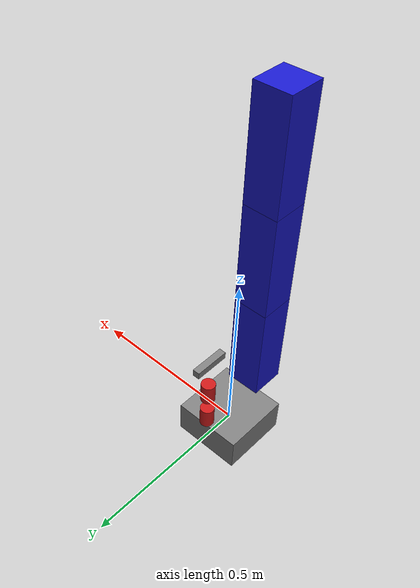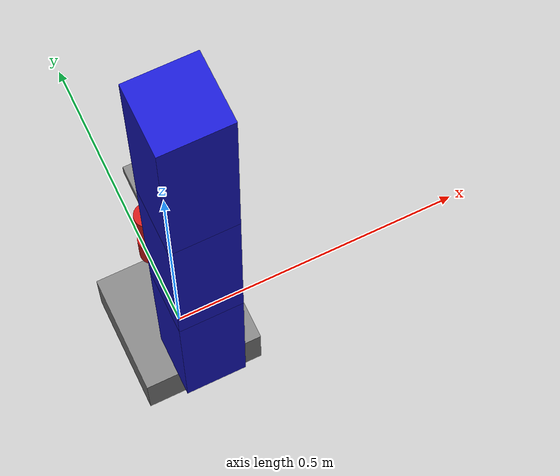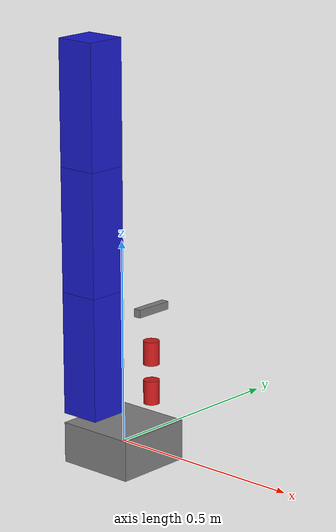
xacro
<?xml version="1.0"?>
<robot xmlns:xacro="http://www.ros.org/wiki/xacro" name="test">

  <xacro:include filename="$(find arm_control)/description/ros2_control/hardware_ros2_control.xacro"/>

  <material name="grey"><color rgba="0.5 0.5 0.5 1"/></material>
  <material name="blue"><color rgba="0.1 0.1 0.8 1"/></material>
  <material name="red"><color rgba="0.8 0.1 0.1 1"/></material>

  <link name="base_link">
    <visual>
      <geometry><box size="0.2 0.2 0.1"/></geometry>
      <material name="grey"/>
    </visual>
  </link>

  <link name="odrive_link_1">
    <visual>
      <origin xyz="0 0 0.15"/>
      <geometry><box size="0.1 0.1 0.3"/></geometry>
      <material name="blue"/>
    </visual>
  </link>

  <link name="odrive_link_2">
    <visual>
      <origin xyz="0 0 0.15"/>
      <geometry><box size="0.1 0.1 0.3"/></geometry>
      <material name="blue"/>
    </visual>
  </link>

  <link name="odrive_link_3">
    <visual>
      <origin xyz="0 0 0.15"/>
      <geometry><box size="0.1 0.1 0.3"/></geometry>
      <material name="blue"/>
    </visual>
  </link>

  <link name="servo_link_1">
    <visual>
      <geometry><cylinder length="0.06" radius="0.02"/></geometry>
      <material name="red"/>
    </visual>
  </link>

  <link name="servo_link_2">
    <visual>
      <geometry><cylinder length="0.06" radius="0.02"/></geometry>
      <material name="red"/>
    </visual>
  </link>

  <link name="gripper_link">
      <visual>
          <geometry><box size="0.02 0.1 0.02"/></geometry>
          <origin xyz="0 0 0.05" rpy="0 0 0"/>
          <material name="grey"/>
      </visual>
      <collision>
          <geometry><box size="0.02 0.1 0.02"/></geometry>
          <origin xyz="0 0 0.05" rpy="0 0 0"/>
      </collision>
  </link>

  <joint name="joint1" type="revolute">
    <parent link="base_link"/>
    <child link="odrive_link_1"/>
    <origin xyz="0 -0.1 0.1"/>
    <axis xyz="0 0 1"/>
    <limit effort="10" lower="-3.12" upper="3.12" velocity="1"/>
  </joint>

  <joint name="joint2" type="revolute">
    <parent link="odrive_link_1"/>
    <child link="odrive_link_2"/>
    <origin xyz="0 0 0.3"/>
    <axis xyz="0 1 0"/>
    <limit effort="10" lower="-1.05" upper="1.92" velocity="1"/>
  </joint>

  <joint name="joint3" type="revolute">
    <parent link="odrive_link_2"/>
    <child link="odrive_link_3"/>
    <origin xyz="0 0 0.3"/>
    <axis xyz="0 1 0"/>
    <limit effort="10" lower="-2.27" upper="2.27" velocity="1"/>
  </joint>

  <joint name="joint4" type="revolute">
    <parent link="base_link"/>
    <child link="servo_link_1"/>
    <origin xyz="0 0.1 0.1"/>
    <axis xyz="0 0 1"/>
    <limit effort="1" lower="-2.09" upper="2.09" velocity="1"/>
  </joint>

  <joint name="joint5" type="revolute">
    <parent link="servo_link_1"/>
    <child link="servo_link_2"/>
    <origin xyz="0 0 0.1"/>
    <axis xyz="0 1 0"/>
    <limit effort="1" lower="-2.09" upper="2.09" velocity="1"/>
  </joint>

  <joint name="gripper1" type="revolute">
      <parent link="servo_link_2"/>
      <child link="gripper_link"/>
      <origin xyz="0 0 0.06" rpy="0 0 0"/>
      <axis xyz="0 1 0"/>
      <limit lower="-0.3" upper="0.3" effort="1" velocity="1"/>
  </joint>

  <xacro:arm_control/>
</robot>
